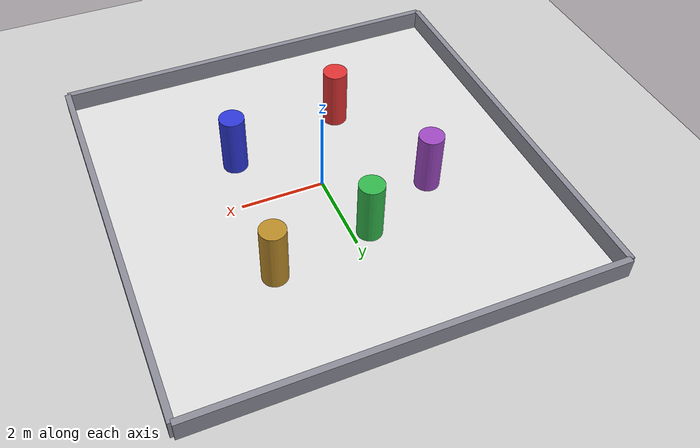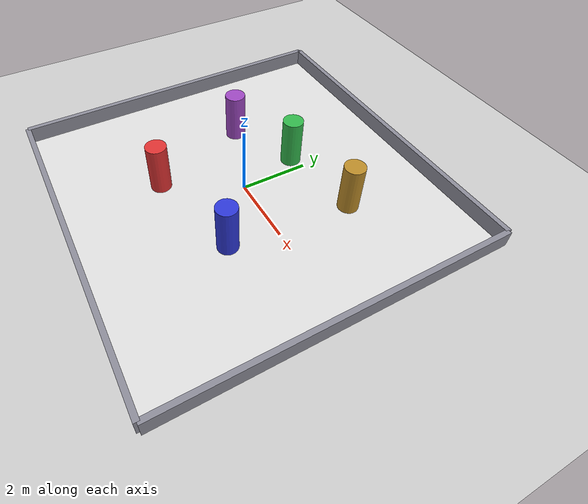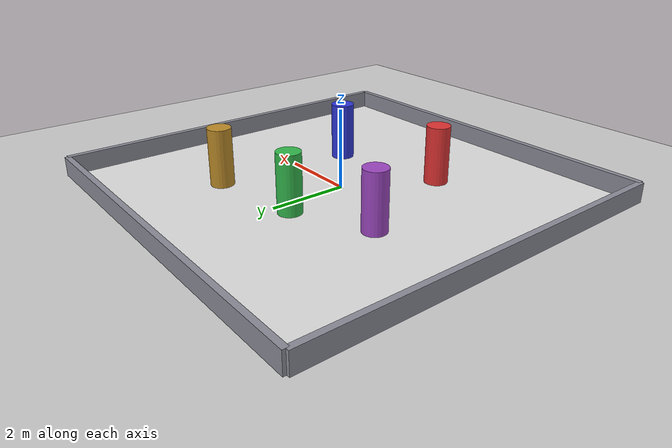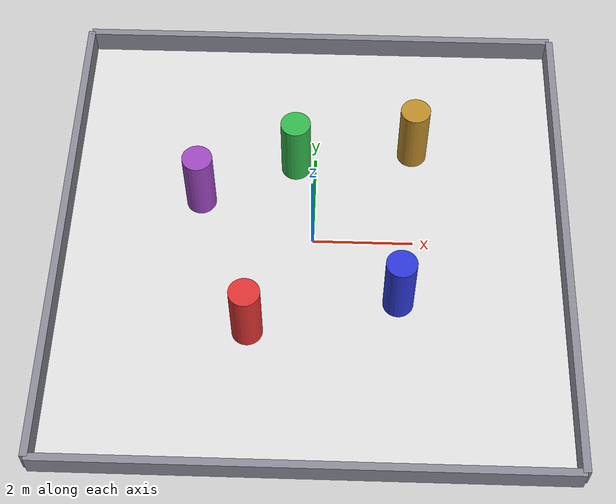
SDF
<?xml version="1.0"?>
<sdf version="1.6">
  <world name="random_crowd">
    <gravity>0 0 -9.8</gravity>
    <magnetic_field>6e-06 2.3e-05 -4.2e-05</magnetic_field>
    <atmosphere type="adiabatic"/>

    <physics name="default_physics" type="ode">
      <max_step_size>0.001</max_step_size>
      <real_time_factor>1.0</real_time_factor>
      <real_time_update_rate>1000</real_time_update_rate>
    </physics>

    <scene>
      <ambient>0.45 0.45 0.45 1.0</ambient>
      <background>0.75 0.82 0.88 1.0</background>
      <shadows>false</shadows>
    </scene>

    <include>
      <uri>model://ground_plane</uri>
    </include>

    <include>
      <uri>model://sun</uri>
    </include>

    <model name="arena_floor">
      <static>true</static>
      <pose>0 0 0 0 0 0</pose>
      <link name="floor_link">
        <collision name="floor_collision">
          <geometry>
            <box>
              <size>10 10 0.02</size>
            </box>
          </geometry>
        </collision>
        <visual name="floor_visual">
          <geometry>
            <box>
              <size>10 10 0.02</size>
            </box>
          </geometry>
          <material>
            <ambient>0.88 0.88 0.88 1.0</ambient>
            <diffuse>0.88 0.88 0.88 1.0</diffuse>
          </material>
        </visual>
      </link>
    </model>

    <model name="north_wall">
      <static>true</static>
      <pose>0 5 0.25 0 0 0</pose>
      <link name="wall_link">
        <collision name="collision">
          <geometry>
            <box>
              <size>10 0.15 0.5</size>
            </box>
          </geometry>
        </collision>
        <visual name="visual">
          <geometry>
            <box>
              <size>10 0.15 0.5</size>
            </box>
          </geometry>
          <material>
            <ambient>0.55 0.55 0.60 1.0</ambient>
            <diffuse>0.55 0.55 0.60 1.0</diffuse>
          </material>
        </visual>
      </link>
    </model>

    <model name="south_wall">
      <static>true</static>
      <pose>0 -5 0.25 0 0 0</pose>
      <link name="wall_link">
        <collision name="collision">
          <geometry>
            <box>
              <size>10 0.15 0.5</size>
            </box>
          </geometry>
        </collision>
        <visual name="visual">
          <geometry>
            <box>
              <size>10 0.15 0.5</size>
            </box>
          </geometry>
          <material>
            <ambient>0.55 0.55 0.60 1.0</ambient>
            <diffuse>0.55 0.55 0.60 1.0</diffuse>
          </material>
        </visual>
      </link>
    </model>

    <model name="east_wall">
      <static>true</static>
      <pose>5 0 0.25 0 0 0</pose>
      <link name="wall_link">
        <collision name="collision">
          <geometry>
            <box>
              <size>0.15 10 0.5</size>
            </box>
          </geometry>
        </collision>
        <visual name="visual">
          <geometry>
            <box>
              <size>0.15 10 0.5</size>
            </box>
          </geometry>
          <material>
            <ambient>0.55 0.55 0.60 1.0</ambient>
            <diffuse>0.55 0.55 0.60 1.0</diffuse>
          </material>
        </visual>
      </link>
    </model>

    <model name="west_wall">
      <static>true</static>
      <pose>-5 0 0.25 0 0 0</pose>
      <link name="wall_link">
        <collision name="collision">
          <geometry>
            <box>
              <size>0.15 10 0.5</size>
            </box>
          </geometry>
        </collision>
        <visual name="visual">
          <geometry>
            <box>
              <size>0.15 10 0.5</size>
            </box>
          </geometry>
          <material>
            <ambient>0.55 0.55 0.60 1.0</ambient>
            <diffuse>0.55 0.55 0.60 1.0</diffuse>
          </material>
        </visual>
      </link>
    </model>

    <model name="obs1">
      <pose>-1.2 -2.1 0.75 0 0 0</pose>
      <link name="obs1_link">
        <gravity>true</gravity>
        <kinematic>true</kinematic>
        <self_collide>false</self_collide>
        <inertial><mass>12.0</mass><inertia><ixx>2.52</ixx><iyy>2.52</iyy><izz>0.54</izz></inertia></inertial>
        <collision name="collision"><geometry><cylinder><radius>0.3</radius><length>1.5</length></cylinder></geometry></collision>
        <visual name="visual"><geometry><cylinder><radius>0.3</radius><length>1.5</length></cylinder></geometry><material><ambient>0.88 0.20 0.20 1.0</ambient><diffuse>0.88 0.20 0.20 1.0</diffuse></material></visual>
      </link>
      <plugin name="obs1_planar_move" filename="libgazebo_ros_planar_move.so">
        <ros><namespace>/obs1</namespace><remapping>cmd_vel:=cmd_vel</remapping><remapping>odom:=odom</remapping></ros>
        <update_rate>100</update_rate><publish_rate>30</publish_rate><publish_odom>false</publish_odom><publish_odom_tf>false</publish_odom_tf><odometry_frame>obs1_odom</odometry_frame><robot_base_frame>obs1_link</robot_base_frame>
      </plugin>
    </model>

    <model name="obs2">
      <pose>1.7 -1.4 0.75 0 0 0</pose>
      <link name="obs2_link">
        <gravity>true</gravity>
        <kinematic>true</kinematic>
        <self_collide>false</self_collide>
        <inertial><mass>12.0</mass><inertia><ixx>2.52</ixx><iyy>2.52</iyy><izz>0.54</izz></inertia></inertial>
        <collision name="collision"><geometry><cylinder><radius>0.3</radius><length>1.5</length></cylinder></geometry></collision>
        <visual name="visual"><geometry><cylinder><radius>0.3</radius><length>1.5</length></cylinder></geometry><material><ambient>0.18 0.22 0.85 1.0</ambient><diffuse>0.18 0.22 0.85 1.0</diffuse></material></visual>
      </link>
      <plugin name="obs2_planar_move" filename="libgazebo_ros_planar_move.so">
        <ros><namespace>/obs2</namespace><remapping>cmd_vel:=cmd_vel</remapping><remapping>odom:=odom</remapping></ros>
        <update_rate>100</update_rate><publish_rate>30</publish_rate><publish_odom>false</publish_odom><publish_odom_tf>false</publish_odom_tf><odometry_frame>obs2_odom</odometry_frame><robot_base_frame>obs2_link</robot_base_frame>
      </plugin>
    </model>

    <model name="obs3">
      <pose>-0.4 1.8 0.75 0 0 0</pose>
      <link name="obs3_link">
        <gravity>true</gravity>
        <kinematic>true</kinematic>
        <self_collide>false</self_collide>
        <inertial><mass>12.0</mass><inertia><ixx>2.52</ixx><iyy>2.52</iyy><izz>0.54</izz></inertia></inertial>
        <collision name="collision"><geometry><cylinder><radius>0.3</radius><length>1.5</length></cylinder></geometry></collision>
        <visual name="visual"><geometry><cylinder><radius>0.3</radius><length>1.5</length></cylinder></geometry><material><ambient>0.20 0.72 0.30 1.0</ambient><diffuse>0.20 0.72 0.30 1.0</diffuse></material></visual>
      </link>
      <plugin name="obs3_planar_move" filename="libgazebo_ros_planar_move.so">
        <ros><namespace>/obs3</namespace><remapping>cmd_vel:=cmd_vel</remapping><remapping>odom:=odom</remapping></ros>
        <update_rate>100</update_rate><publish_rate>30</publish_rate><publish_odom>false</publish_odom><publish_odom_tf>false</publish_odom_tf><odometry_frame>obs3_odom</odometry_frame><robot_base_frame>obs3_link</robot_base_frame>
      </plugin>
    </model>

    <model name="obs4">
      <pose>2.0 2.2 0.75 0 0 0</pose>
      <link name="obs4_link">
        <gravity>true</gravity>
        <kinematic>true</kinematic>
        <self_collide>false</self_collide>
        <inertial><mass>12.0</mass><inertia><ixx>2.52</ixx><iyy>2.52</iyy><izz>0.54</izz></inertia></inertial>
        <collision name="collision"><geometry><cylinder><radius>0.3</radius><length>1.5</length></cylinder></geometry></collision>
        <visual name="visual"><geometry><cylinder><radius>0.3</radius><length>1.5</length></cylinder></geometry><material><ambient>0.74 0.55 0.16 1.0</ambient><diffuse>0.74 0.55 0.16 1.0</diffuse></material></visual>
      </link>
      <plugin name="obs4_planar_move" filename="libgazebo_ros_planar_move.so">
        <ros><namespace>/obs4</namespace><remapping>cmd_vel:=cmd_vel</remapping><remapping>odom:=odom</remapping></ros>
        <update_rate>100</update_rate><publish_rate>30</publish_rate><publish_odom>false</publish_odom><publish_odom_tf>false</publish_odom_tf><odometry_frame>obs4_odom</odometry_frame><robot_base_frame>obs4_link</robot_base_frame>
      </plugin>
    </model>

    <model name="obs5">
      <pose>-2.3 0.9 0.75 0 0 0</pose>
      <link name="obs5_link">
        <gravity>true</gravity>
        <kinematic>true</kinematic>
        <self_collide>false</self_collide>
        <inertial><mass>12.0</mass><inertia><ixx>2.52</ixx><iyy>2.52</iyy><izz>0.54</izz></inertia></inertial>
        <collision name="collision"><geometry><cylinder><radius>0.3</radius><length>1.5</length></cylinder></geometry></collision>
        <visual name="visual"><geometry><cylinder><radius>0.3</radius><length>1.5</length></cylinder></geometry><material><ambient>0.62 0.28 0.76 1.0</ambient><diffuse>0.62 0.28 0.76 1.0</diffuse></material></visual>
      </link>
      <plugin name="obs5_planar_move" filename="libgazebo_ros_planar_move.so">
        <ros><namespace>/obs5</namespace><remapping>cmd_vel:=cmd_vel</remapping><remapping>odom:=odom</remapping></ros>
        <update_rate>100</update_rate><publish_rate>30</publish_rate><publish_odom>false</publish_odom><publish_odom_tf>false</publish_odom_tf><odometry_frame>obs5_odom</odometry_frame><robot_base_frame>obs5_link</robot_base_frame>
      </plugin>
    </model>
  </world>
</sdf>
